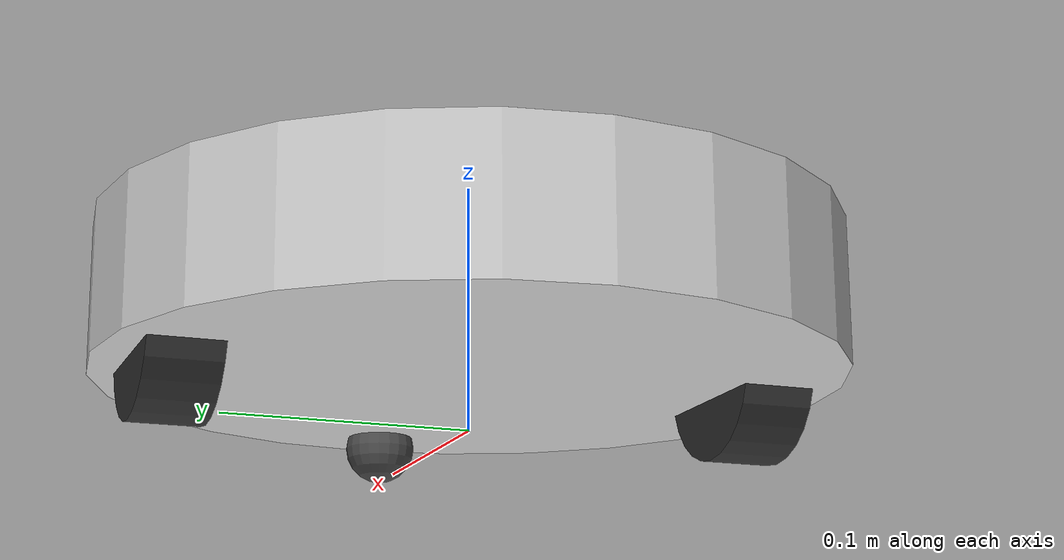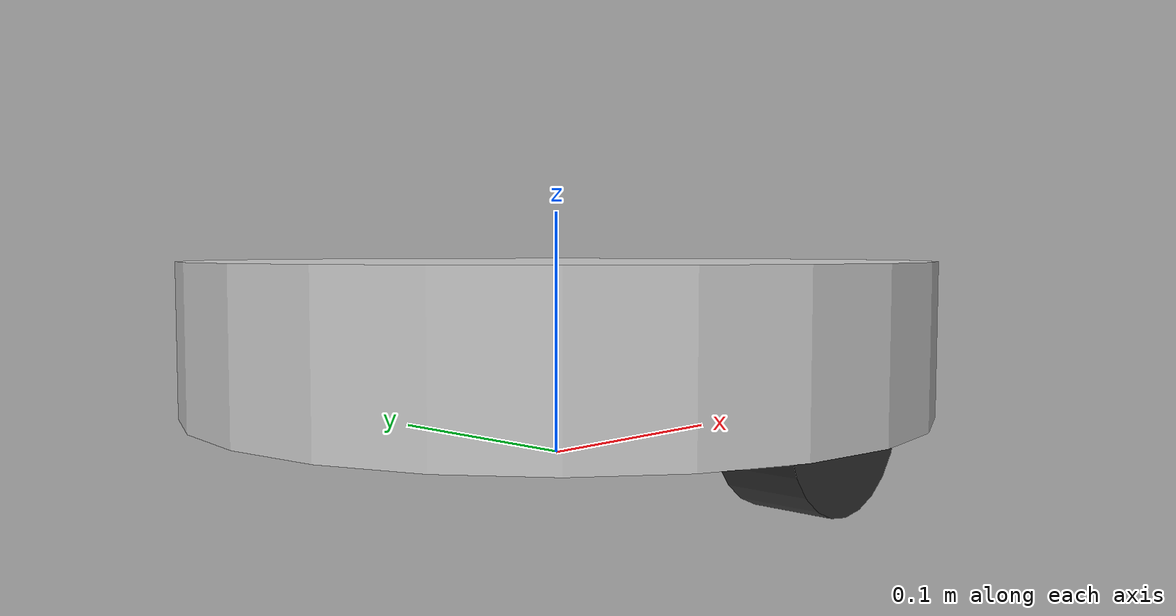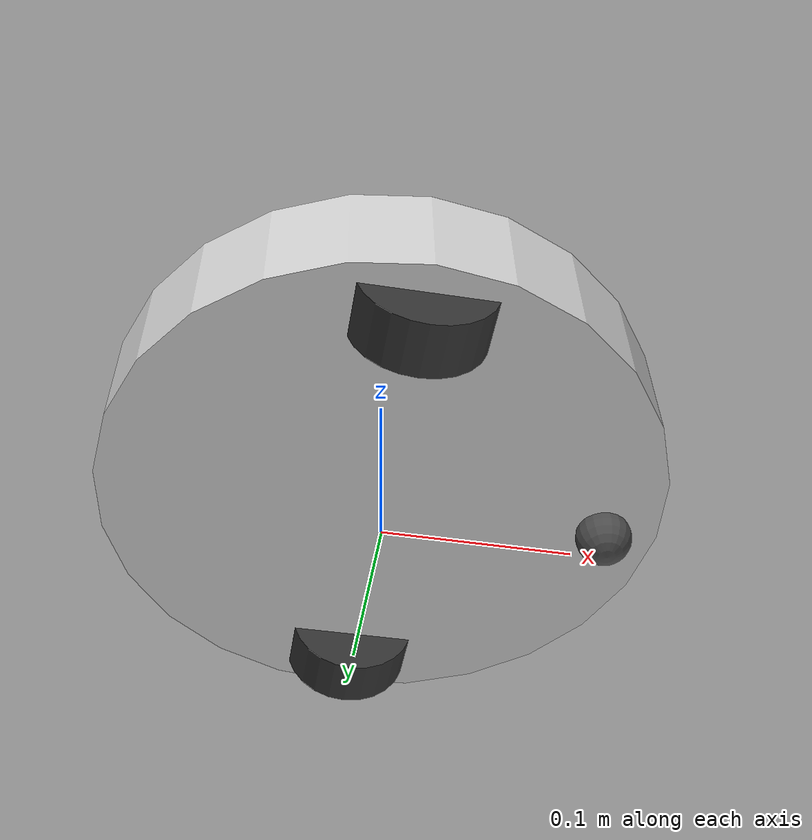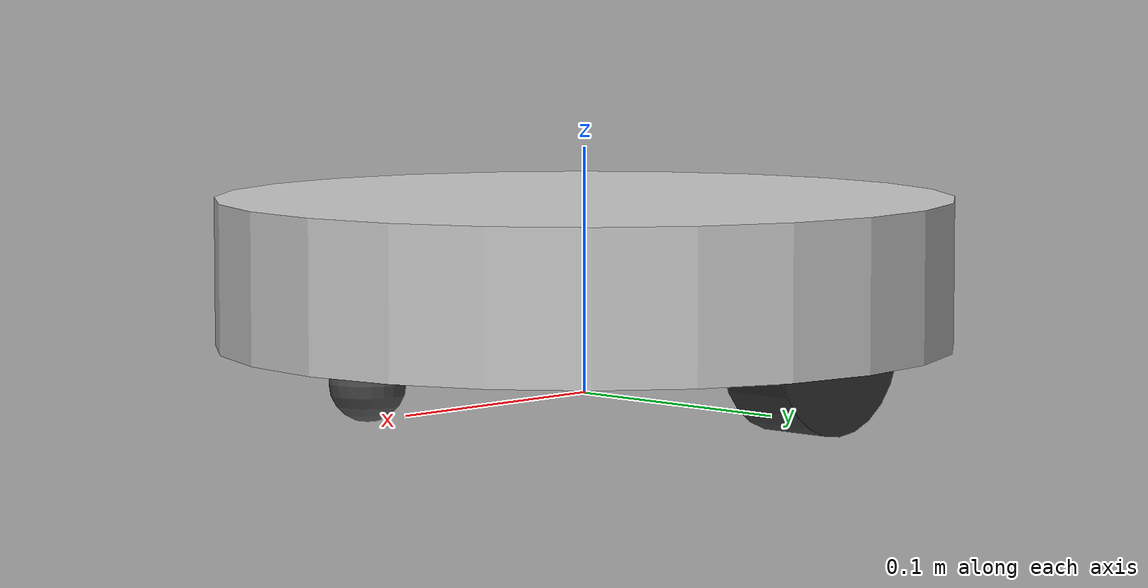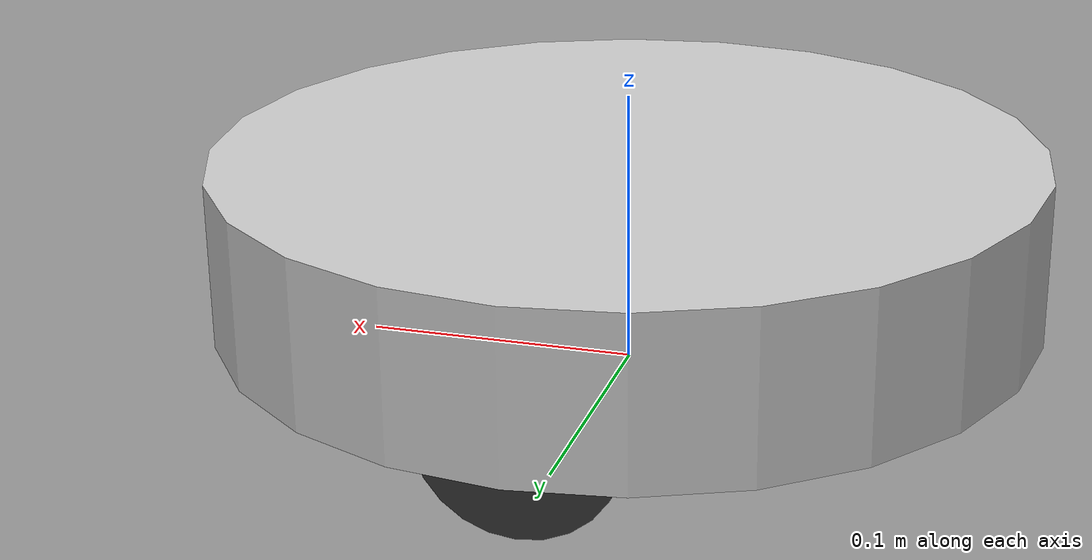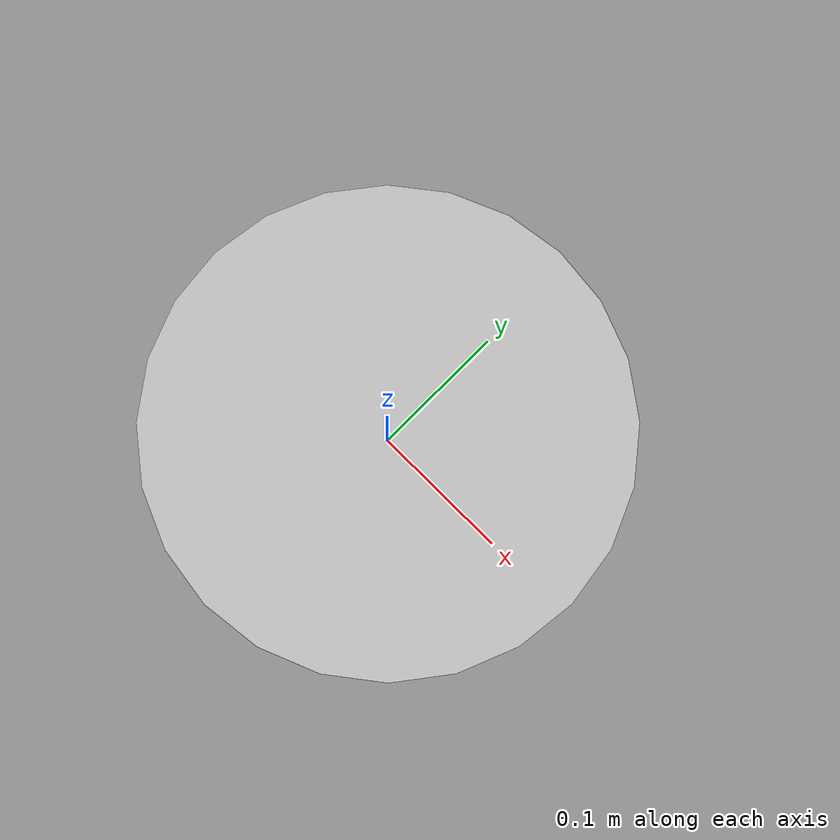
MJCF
<mujoco model="robot">
    <compiler angle="radian" />
    <default>
        <geom density="1000" />
        <joint damping="0.02" armature="0.05" frictionloss="0.01" />
        <default class="wheel">
            <geom type="cylinder" size="0.035 0.015" rgba="0.2 0.2 0.2 1"
                  contype="1" conaffinity="1" friction="1.0 0.1 0.1" />
        </default>
        <default class="caster_wheel">
            <geom type="sphere" size="0.015" rgba="0.3 0.3 0.3 1"
                  contype="1" conaffinity="1" friction="0.8 0.1 0.1" />
        </default>
    </default>

    <worldbody>
        <body name="body" pos="0 0 0.05">
            <site name="ImuSensor" pos="0 0 0" euler="0 0 0" />
            <!-- Main circular body -->
            <geom name="main_body" type="cylinder" size="0.15 0.03" pos="0 0 0"
                  rgba="0.8 0.8 0.8 1" mass="1.0" />

            <!-- Left drive wheel -->
            <body name="left_wheel" pos="0 0.12 -0.02">
                <joint name="left_wheel_joint" type="hinge" axis="0 1 0" />
                <geom class="wheel" quat="0.7071 0.7071 0 0"/>
            </body>

            <!-- Right drive wheel -->
            <body name="right_wheel" pos="0 -0.12 -0.02">
                <joint name="right_wheel_joint" type="hinge" axis="0 1 0" />
                <geom class="wheel" quat="0.7071 0.7071 0 0" />
            </body>

            <!-- Front caster wheel -->
            <body name="caster_wheel" pos="0.12 0 -0.035">
                <joint name="caster_ball_joint" type="ball" />
                <geom class="caster_wheel" mass="1" />
            </body>
        </body>
    </worldbody>

    <contact>
        <!-- Exclude internal collisions -->
        <exclude body1="body" body2="left_wheel" />
        <exclude body1="body" body2="right_wheel" />
        <exclude body1="body" body2="caster_wheel" />
    </contact>

    <actuator>
        <!-- Differential drive actuators -->
        <velocity name="left_wheel" joint="left_wheel_joint"
            ctrllimited="true" ctrlrange="-20 20"
            forcelimited="true" forcerange="-3.0 3.0"
            kv="1"/>
        <velocity name="right_wheel" joint="right_wheel_joint"
            ctrllimited="true" ctrlrange="-20 20"
            forcelimited="true" forcerange="-3.0 3.0"
            kv="1"/>
    </actuator>

    <sensor>
        <framequat name="ImuSensor_Framequat" objtype="site" objname="ImuSensor" />
        <velocimeter name="ImuSensor_Velocimeter" site="ImuSensor" />
        <gyro name="ImuSensor_Gyro" site="ImuSensor" />
        <accelerometer name="ImuSensor_Accelerometer" site="ImuSensor" />
    </sensor>
</mujoco>
